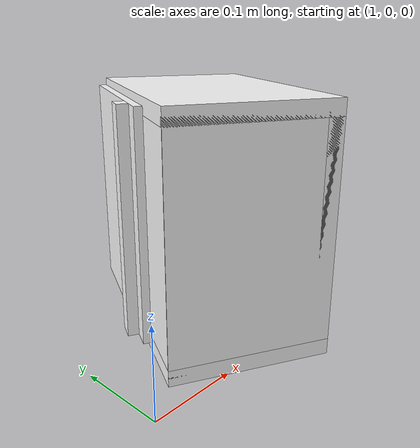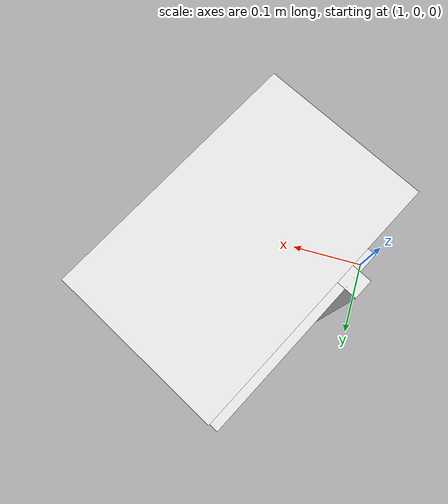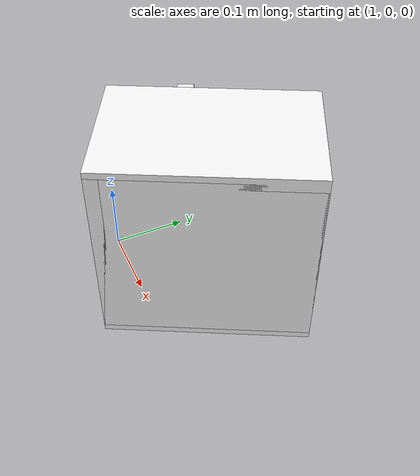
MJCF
<mujoco model="cabinet">
    <compiler angle="radian" eulerseq='zxy' />
    <option gravity = "0 0 0" />
    <option>
        <flag contact = "disable"/>
    </option>
    <statistic	extent="1.0" center="0.0 0.0 0.0"/>
    <visual>
        <map fogstart="3" fogend="5" force="0.1" znear=" 0.100000 " zfar=" 12.000000 "/>
    </visual>
    <size njmax="500" nconmax="100" />
    <actuator>
        <velocity joint="bottom_left_hinge" name="viva_revolution" kv='10'></velocity>
    </actuator>
    <asset>
        <texture builtin="flat" name="tabletex" height="32" width="32" rgb1="1 1 1" type="cube"></texture>
        <texture builtin="flat" name="objtex" height="32" width="32" rgb1="1 1 1" type="cube"></texture>
        <texture builtin="flat" name="handletex" height="32" width="32" rgb1="1 1 1" type="cube"></texture>
        <texture builtin="flat" name="wallpaper" height="32" width="32" rgb1="1 0 0" type="cube"></texture>
        <texture builtin="flat" name="kp" height="32" width="32" rgb1="1 1 1" type="cube"></texture>
        <material name="geomTable" shininess="0.03" specular="0.75" texture="tabletex"></material>
        <material name="geomObj" shininess="0.03" specular="0.75" texture="objtex"></material>
        <material name="geomHandle" shininess="0.03" specular="0.75" texture="handletex"></material>
        <material name="ax" shininess="0.03" specular="0.75" texture="wallpaper"></material>
        <material name="bg" shininess="0.03" specular="0.75" texture="wallpaper"></material>
        <material name="geomKeypad" shininess="0.03" specular="0.75" texture="kp"></material>
    </asset>
    <worldbody>
        <body name="cabinet_bottom" pos= " 1.153477 0.080218 0.033286 "  quat= " 0.235704 0.000000 0.000000 0.971825" >
            <inertial pos="0 0 0" mass="1" diaginertia="1 1 1" />
            <geom size= " 0.083214 0.129148 0.008398 "  type="box" material="geomObj" name="b"/>
            <body name="cabinet_left" pos= " 0.000000 -0.120750 0.119931 " >
                <inertial pos="0 0 0" mass="1" diaginertia="1 1 1" />
                <geom size= " 0.083214 0.008398 0.119931 "  type="box" material="geomObj" name="c" />
            </body>
            <body name="cabinet_right" pos= " 0.000000 0.120750 0.119931 " >
                <inertial pos="0 0 0" mass="1" diaginertia="1 1 1" />
                <geom size= " 0.083214 0.008398 0.119931 "  type="box" material="geomObj" name="d" />
            </body>
            <body name="cabinet_top" pos= " 0.000000 0.000000 0.239861 " >
                <inertial pos="0 0 0" mass="1" diaginertia="1 1 1" />
                <geom size= " 0.083214 0.129148 0.008398 "  type="box" material="geomObj" name="e"/>
            </body>
            <body name="cabinet_back" pos= " -0.074816 0.000000 0.119931 "  >
                <inertial pos="0 0 0" mass="1" diaginertia="1 1 1" />
                <geom size= " 0.008398 0.129148 0.119931 "  type="box" material="geomObj" name="f" />
            </body>
            <body name="cabinet_keypad" pos= " 0.008398 0.095861 0.119931 " >
                <inertial pos="0 0 0" mass="1" diaginertia="1 1 1" />
                <geom size= " 0.074816 0.032287 0.111533 "  type="box" material="geomKeypad" name="keypizzlemynizzle" />
            </body>
            <body name="cabinet_left_hinge" pos= " 0.083214 -0.129148 0.119931 " >
                <inertial pos= " 0.000000 0.096861 0.000000 "  mass="1" diaginertia="1 1 1" />
                <joint name="bottom_left_hinge" type="hinge" pos="0 0 0" axis="0 0 1" limited="true" range= "-2.3 0"  />
                <geom size= " 0.008398 0.096861 0.119931 "  pos= " 0.000000 0.096861 0.000000 "  type="box" material="geomObj" name="g"/>
                <body name="handle_link" pos= " 0.010000 0.163722 0.000000 " >
                    <inertial pos="0 0 0" mass="1" diaginertia="1 1 1" />
                    <geom size= " 0.010000 0.010000 0.119931 "  type="box" material="geomHandle" name="h"/>
                </body>
            </body>
        </body>
        <body name="external_camera_body_0" pos="0.0 0 0.00" >
            <camera euler="-1.57 1.57 0.0" fovy=" 54.280851 " name="external_camera_0" pos="0.0 0 0"></camera>
            <inertial pos= " 0.00 0.0 0.000000 " mass="1" diaginertia="1 1 1" />
            <joint name="cam_j" pos="0.0 0 0" axis = "1 0 0" type="free" />
        </body>
    </worldbody>
</mujoco>
